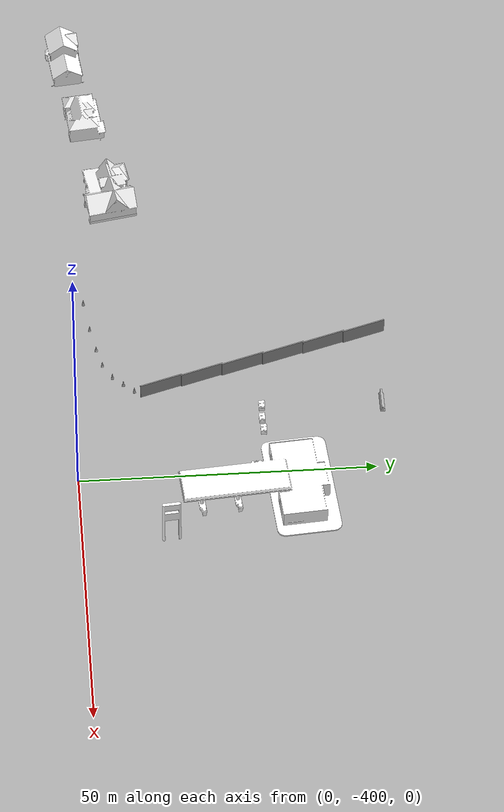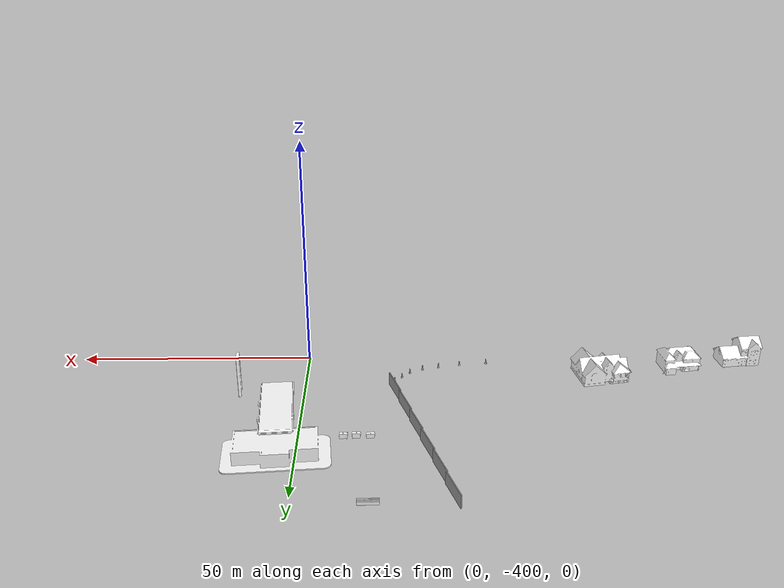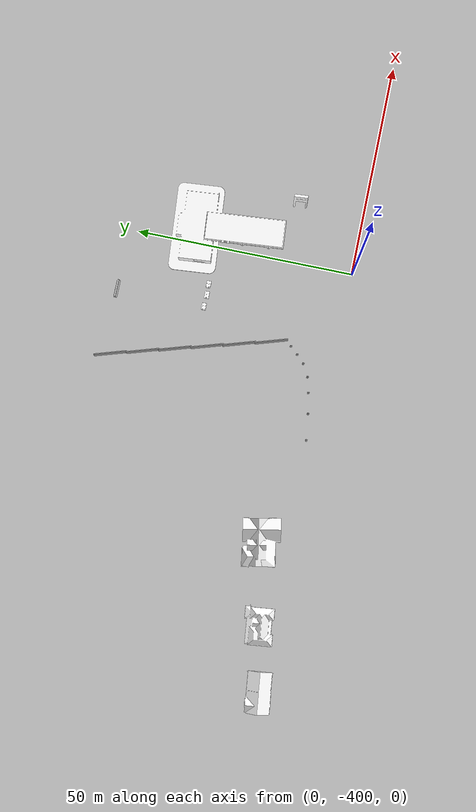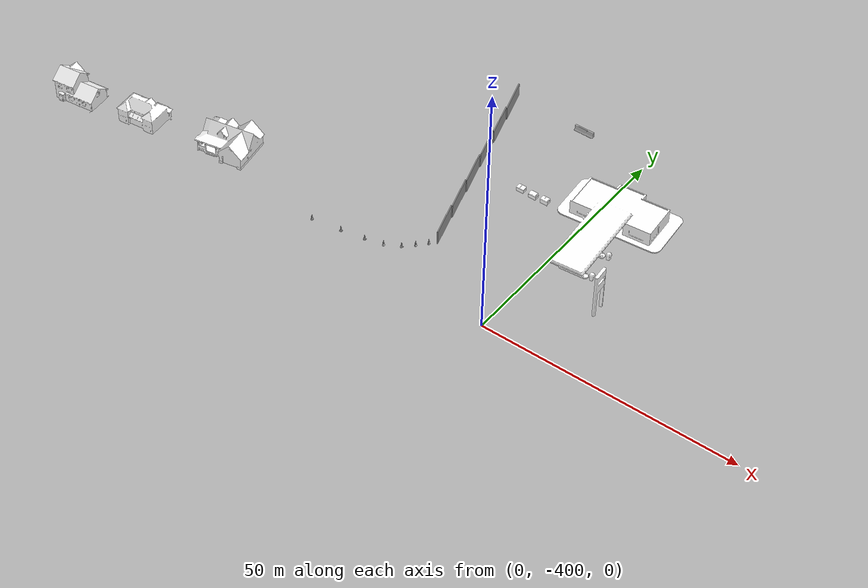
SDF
<sdf version="1.6">
 <world name="default">
  <model name="Gas Station">
   <static>1</static>
   <link name="link">
    <collision name="collision">
     <geometry><mesh><uri>model://gas_station/meshes/gas_station.dae</uri></mesh></geometry>
    </collision>
    <visual name="visual">
     <geometry><mesh><uri>model://gas_station/meshes/gas_station.dae</uri></mesh></geometry>
     <material>
      <script>
       <uri>model://gas_station/materials/scripts</uri>
       <uri>model://gas_station/materials/textures</uri>
       <name>GasStation/Diffuse</name>
      </script>
      <shader type="normal_map_object_space"><normal_map>GasStation_Normal.png</normal_map></shader>
     </material>
    </visual>
   </link>
   <pose>3.60098 -363.272 0 0 -0 0.083826</pose>
  </model>
  <model name="Dumpster">
   <link name="link">
    <collision name="collision">
     <geometry><mesh><uri>model://dumpster/meshes/dumpster.dae</uri></mesh></geometry>
    </collision>
    <visual name="visual">
     <geometry><mesh><uri>model://dumpster/meshes/dumpster.dae</uri></mesh></geometry>
     <material>
      <script>
       <uri>model://dumpster/materials/scripts</uri>
       <uri>model://dumpster/materials/textures</uri>
       <name>Dumpster/Diffuse</name>
      </script>
     </material>
    </visual>
    <inertial>
     <inertia><ixx>1</ixx><ixy>0</ixy><ixz>0</ixz><iyy>1</iyy><iyz>0</iyz><izz>1</izz></inertia>
     <mass>1</mass>
    </inertial>
   </link>
   <pose>-8.90017 -368.352 0.000915 4e-06 -3e-06 0</pose>
  </model>
  <model name="Dumpster_clone">
   <link name="link">
    <collision name="collision">
     <geometry><mesh><uri>model://dumpster/meshes/dumpster.dae</uri></mesh></geometry>
    </collision>
    <visual name="visual">
     <geometry><mesh><uri>model://dumpster/meshes/dumpster.dae</uri></mesh></geometry>
     <material>
      <script>
       <uri>model://dumpster/materials/scripts</uri>
       <uri>model://dumpster/materials/textures</uri>
       <name>Dumpster/Diffuse</name>
      </script>
     </material>
    </visual>
    <inertial>
     <inertia><ixx>1</ixx><ixy>0</ixy><ixz>0</ixz><iyy>1</iyy><iyz>0</iyz><izz>1</izz></inertia>
     <mass>1</mass>
    </inertial>
   </link>
   <pose>-11.3737 -368.473 0.000918 0 -0 0</pose>
  </model>
  <model name="Dumpster_clone_0">
   <link name="link">
    <collision name="collision">
     <geometry><mesh><uri>model://dumpster/meshes/dumpster.dae</uri></mesh></geometry>
    </collision>
    <visual name="visual">
     <geometry><mesh><uri>model://dumpster/meshes/dumpster.dae</uri></mesh></geometry>
     <material>
      <script>
       <uri>model://dumpster/materials/scripts</uri>
       <uri>model://dumpster/materials/textures</uri>
       <name>Dumpster/Diffuse</name>
      </script>
     </material>
    </visual>
    <inertial>
     <inertia><ixx>1</ixx><ixy>0</ixy><ixz>0</ixz><iyy>1</iyy><iyz>0</iyz><izz>1</izz></inertia>
     <mass>1</mass>
    </inertial>
   </link>
   <pose>-14.121 -368.35 0.000918 0 -0 0</pose>
  </model>
  <model name="jersey_barrier_clone_clone_clone">
   <static>1</static>
   <link name="link">
    <visual name="visual">
     <geometry><mesh><uri>model://jersey_barrier/meshes/jersey_barrier.dae</uri></mesh></geometry>
    </visual>
    <collision name="upright">
     <pose>0 0 0.5715 0 -0 0</pose>
     <geometry><box><size>4.06542 0.3063 1.143</size></box></geometry>
    </collision>
    <collision name="base">
     <pose>0 0 0.032258 0 -0 0</pose>
     <geometry><box><size>4.06542 0.8107 0.064516</size></box></geometry>
    </collision>
    <collision name="base2">
     <pose>0 0 0.1 0 -0 0</pose>
     <geometry><box><size>4.06542 0.65 0.1</size></box></geometry>
    </collision>
    <collision name="base3">
     <pose>0 0 0.2 0 -0 0</pose>
     <geometry><box><size>4.06542 0.5 0.1</size></box></geometry>
    </collision>
    <collision name="left-angle">
     <pose>0 -0.224 0.2401 0.9 -0 0</pose>
     <geometry><box><size>4.06542 0.5 0.064516</size></box></geometry>
    </collision>
    <collision name="right-angle">
     <pose>0 0.224 0.2401 -0.9 0 0</pose>
     <geometry><box><size>4.06542 0.5 0.064516</size></box></geometry>
    </collision>
   </link>
   <pose>-14.0215 -348.019 0 0 -0 0</pose>
  </model>
  <model name="grey_wall">
   <static>1</static>
   <link name="link">
    <pose>0 0 1.4 0 -0 0</pose>
    <collision name="collision"><geometry><box><size>7.5 0.2 2.8</size></box></geometry></collision>
    <visual name="visual">
     <cast_shadows>0</cast_shadows>
     <geometry><box><size>7.5 0.2 2.8</size></box></geometry>
     <material>
      <script>
       <uri>model://grey_wall/materials/scripts</uri>
       <uri>model://grey_wall/materials/textures</uri>
       <name>vrc/grey_wall</name>
      </script>
     </material>
    </visual>
   </link>
   <pose>-29 -350 0 0 -0 1.87601</pose>
  </model>
  <model name="grey_wall_clone">
   <static>1</static>
   <link name="link">
    <pose>0 0 1.4 0 -0 0</pose>
    <collision name="collision"><geometry><box><size>7.5 0.2 2.8</size></box></geometry></collision>
    <visual name="visual">
     <cast_shadows>0</cast_shadows>
     <geometry><box><size>7.5 0.2 2.8</size></box></geometry>
     <material>
      <script>
       <uri>model://grey_wall/materials/scripts</uri>
       <uri>model://grey_wall/materials/textures</uri>
       <name>vrc/grey_wall</name>
      </script>
     </material>
    </visual>
   </link>
   <pose>-27 -357 0 0 -0 1.87601</pose>
  </model>
  <model name="grey_wall_clone_0">
   <static>1</static>
   <link name="link">
    <pose>0 0 1.4 0 -0 0</pose>
    <collision name="collision"><geometry><box><size>7.5 0.2 2.8</size></box></geometry></collision>
    <visual name="visual">
     <cast_shadows>0</cast_shadows>
     <geometry><box><size>7.5 0.2 2.8</size></box></geometry>
     <material>
      <script>
       <uri>model://grey_wall/materials/scripts</uri>
       <uri>model://grey_wall/materials/textures</uri>
       <name>vrc/grey_wall</name>
      </script>
     </material>
    </visual>
   </link>
   <pose>-25 -364 0 0 -0 1.87601</pose>
  </model>
  <model name="grey_wall_clone_0_clone">
   <static>1</static>
   <link name="link">
    <pose>0 0 1.4 0 -0 0</pose>
    <collision name="collision"><geometry><box><size>7.5 0.2 2.8</size></box></geometry></collision>
    <visual name="visual">
     <cast_shadows>0</cast_shadows>
     <geometry><box><size>7.5 0.2 2.8</size></box></geometry>
     <material>
      <script>
       <uri>model://grey_wall/materials/scripts</uri>
       <uri>model://grey_wall/materials/textures</uri>
       <name>vrc/grey_wall</name>
      </script>
     </material>
    </visual>
   </link>
   <pose>-23 -371 0 0 -0 1.87601</pose>
  </model>
  <model name="grey_wall_clone_0_clone_clone">
   <static>1</static>
   <link name="link">
    <pose>0 0 1.4 0 -0 0</pose>
    <collision name="collision"><geometry><box><size>7.5 0.2 2.8</size></box></geometry></collision>
    <visual name="visual">
     <cast_shadows>0</cast_shadows>
     <geometry><box><size>7.5 0.2 2.8</size></box></geometry>
     <material>
      <script>
       <uri>model://grey_wall/materials/scripts</uri>
       <uri>model://grey_wall/materials/textures</uri>
       <name>vrc/grey_wall</name>
      </script>
     </material>
    </visual>
   </link>
   <pose>-21 -378 0 0 -0 1.87601</pose>
  </model>
  <model name="grey_wall_clone_0_clone_clone_clone">
   <static>1</static>
   <link name="link">
    <pose>0 0 1.4 0 -0 0</pose>
    <collision name="collision"><geometry><box><size>7.5 0.2 2.8</size></box></geometry></collision>
    <visual name="visual">
     <cast_shadows>0</cast_shadows>
     <geometry><box><size>7.5 0.2 2.8</size></box></geometry>
     <material>
      <script>
       <uri>model://grey_wall/materials/scripts</uri>
       <uri>model://grey_wall/materials/textures</uri>
       <name>vrc/grey_wall</name>
      </script>
     </material>
    </visual>
   </link>
   <pose>-19 -385 0 0 -0 1.87601</pose>
  </model>
  <model name="House 1">
   <static>1</static>
   <link name="link">
    <collision name="collision">
     <geometry><mesh><uri>model://house_1/meshes/house_1.dae</uri></mesh></geometry>
    </collision>
    <visual name="visual">
     <geometry><mesh><uri>model://house_1/meshes/house_1.dae</uri></mesh></geometry>
     <material>
      <script>
       <uri>model://house_1/materials/scripts</uri>
       <uri>model://house_1/materials/textures</uri>
       <name>House_1/Diffuse</name>
      </script>
      <shader type="normal_map_object_space"><normal_map>House_1_Normal.png</normal_map></shader>
     </material>
    </visual>
   </link>
   <pose>-63.4144 -391.538 0 0 -0 0.178783</pose>
  </model>
  <model name="House 2">
   <static>1</static>
   <link name="link">
    <collision name="collision">
     <geometry><mesh><uri>model://house_2/meshes/house_2.dae</uri></mesh></geometry>
    </collision>
    <visual name="visual">
     <geometry><mesh><uri>model://house_2/meshes/house_2.dae</uri></mesh></geometry>
     <material>
      <script>
       <uri>model://house_2/materials/scripts</uri>
       <uri>model://house_2/materials/textures</uri>
       <uri>model://house_1/materials/textures</uri>
       <name>House_2/Diffuse</name>
      </script>
      <shader type="normal_map_object_space">
       <normal_map>model://house_1/materials/textures/House_1_Normal.png</normal_map>
      </shader>
     </material>
    </visual>
   </link>
   <pose>-82.0852 -395.523 0 0 -0 0.112755</pose>
  </model>
  <model name="House 3">
   <static>1</static>
   <link name="link">
    <collision name="collision">
     <geometry><mesh><uri>model://house_3/meshes/house_3.dae</uri></mesh></geometry>
    </collision>
    <visual name="visual">
     <geometry><mesh><uri>model://house_3/meshes/house_3.dae</uri></mesh></geometry>
     <material>
      <script>
       <uri>model://house_3/materials/scripts</uri>
       <uri>model://house_3/materials/textures</uri>
       <uri>model://house_1/materials/textures</uri>
       <name>House_3/Diffuse</name>
      </script>
      <shader type="normal_map_object_space">
       <normal_map>model://house_1/materials/textures/House_1_Normal.png</normal_map>
      </shader>
     </material>
    </visual>
   </link>
   <pose>-94.9389 -397.723 0 0 -0 0.112475</pose>
  </model>
  <model name="Construction Cone">
   <link name="link">
    <collision name="collision">
     <geometry>
      <mesh><scale>10 10 10</scale><uri>model://construction_cone/meshes/construction_cone.dae</uri></mesh>
     </geometry>
    </collision>
    <visual name="visual">
     <geometry>
      <mesh><scale>10 10 10</scale><uri>model://construction_cone/meshes/construction_cone.dae</uri></mesh>
     </geometry>
    </visual>
    <inertial>
     <inertia><ixx>1</ixx><ixy>0</ixy><ixz>0</ixz><iyy>1</iyy><iyz>0</iyz><izz>1</izz></inertia>
     <mass>1</mass>
    </inertial>
   </link>
   <pose>-19 -389.557 -1e-05 0 -0 0</pose>
  </model>
  <model name="Construction Cone_clone">
   <link name="link">
    <collision name="collision">
     <geometry>
      <mesh><scale>10 10 10</scale><uri>model://construction_cone/meshes/construction_cone.dae</uri></mesh>
     </geometry>
    </collision>
    <visual name="visual">
     <geometry>
      <mesh><scale>10 10 10</scale><uri>model://construction_cone/meshes/construction_cone.dae</uri></mesh>
     </geometry>
    </visual>
    <inertial>
     <inertia><ixx>1</ixx><ixy>0</ixy><ixz>0</ixz><iyy>1</iyy><iyz>0</iyz><izz>1</izz></inertia>
     <mass>1</mass>
    </inertial>
   </link>
   <pose>-20.5705 -391.331 -8e-06 2e-06 -1e-06 -0</pose>
  </model>
  <model name="Construction Cone_clone_clone">
   <link name="link">
    <collision name="collision">
     <geometry>
      <mesh><scale>10 10 10</scale><uri>model://construction_cone/meshes/construction_cone.dae</uri></mesh>
     </geometry>
    </collision>
    <visual name="visual">
     <geometry>
      <mesh><scale>10 10 10</scale><uri>model://construction_cone/meshes/construction_cone.dae</uri></mesh>
     </geometry>
    </visual>
    <inertial>
     <inertia><ixx>1</ixx><ixy>0</ixy><ixz>0</ixz><iyy>1</iyy><iyz>0</iyz><izz>1</izz></inertia>
     <mass>1</mass>
    </inertial>
   </link>
   <pose>-22.3249 -393.096 -9e-06 1e-06 -1e-06 0</pose>
  </model>
  <model name="Construction Cone_clone_clone_clone">
   <link name="link">
    <collision name="collision">
     <geometry>
      <mesh><scale>10 10 10</scale><uri>model://construction_cone/meshes/construction_cone.dae</uri></mesh>
     </geometry>
    </collision>
    <visual name="visual">
     <geometry>
      <mesh><scale>10 10 10</scale><uri>model://construction_cone/meshes/construction_cone.dae</uri></mesh>
     </geometry>
    </visual>
    <inertial>
     <inertia><ixx>1</ixx><ixy>0</ixy><ixz>0</ixz><iyy>1</iyy><iyz>0</iyz><izz>1</izz></inertia>
     <mass>1</mass>
    </inertial>
   </link>
   <pose>-25.1263 -394.655 -0 -1e-06 0 0</pose>
  </model>
  <model name="Construction Cone_clone_clone_clone_clone">
   <link name="link">
    <collision name="collision">
     <geometry>
      <mesh><scale>10 10 10</scale><uri>model://construction_cone/meshes/construction_cone.dae</uri></mesh>
     </geometry>
    </collision>
    <visual name="visual">
     <geometry>
      <mesh><scale>10 10 10</scale><uri>model://construction_cone/meshes/construction_cone.dae</uri></mesh>
     </geometry>
    </visual>
    <inertial>
     <inertia><ixx>1</ixx><ixy>0</ixy><ixz>0</ixz><iyy>1</iyy><iyz>0</iyz><izz>1</izz></inertia>
     <mass>1</mass>
    </inertial>
   </link>
   <pose>-28.6583 -395.535 -0 0 1e-06 0</pose>
  </model>
  <model name="Construction Cone_clone_clone_clone_clone_clone">
   <link name="link">
    <collision name="collision">
     <geometry>
      <mesh><scale>10 10 10</scale><uri>model://construction_cone/meshes/construction_cone.dae</uri></mesh>
     </geometry>
    </collision>
    <visual name="visual">
     <geometry>
      <mesh><scale>10 10 10</scale><uri>model://construction_cone/meshes/construction_cone.dae</uri></mesh>
     </geometry>
    </visual>
    <inertial>
     <inertia><ixx>1</ixx><ixy>0</ixy><ixz>0</ixz><iyy>1</iyy><iyz>0</iyz><izz>1</izz></inertia>
     <mass>1</mass>
    </inertial>
   </link>
   <pose>-33.3133 -396.401 -1e-05 1e-06 -0 0</pose>
  </model>
  <model name="Construction Cone_clone_clone_clone_clone_clone_clone">
   <link name="link">
    <collision name="collision">
     <geometry>
      <mesh><scale>10 10 10</scale><uri>model://construction_cone/meshes/construction_cone.dae</uri></mesh>
     </geometry>
    </collision>
    <visual name="visual">
     <geometry>
      <mesh><scale>10 10 10</scale><uri>model://construction_cone/meshes/construction_cone.dae</uri></mesh>
     </geometry>
    </visual>
    <inertial>
     <inertia><ixx>1</ixx><ixy>0</ixy><ixz>0</ixz><iyy>1</iyy><iyz>0</iyz><izz>1</izz></inertia>
     <mass>1</mass>
    </inertial>
   </link>
   <pose>-39.2634 -397.191 0 0 -0 0</pose>
  </model>
 </world>
</sdf>
